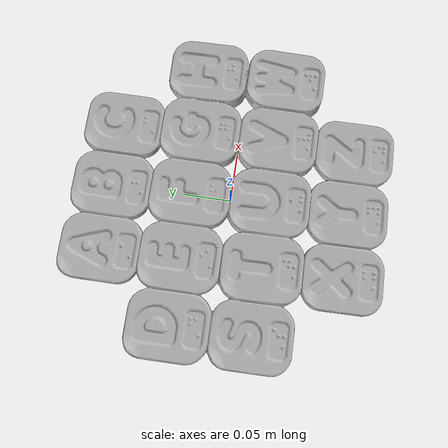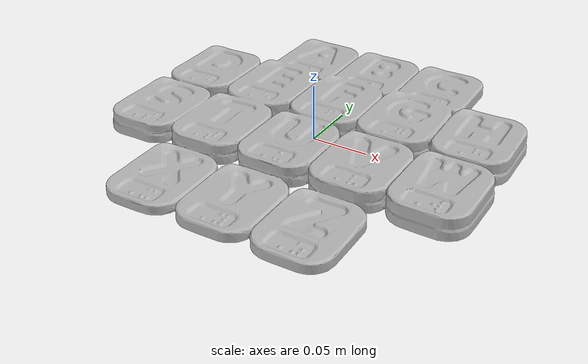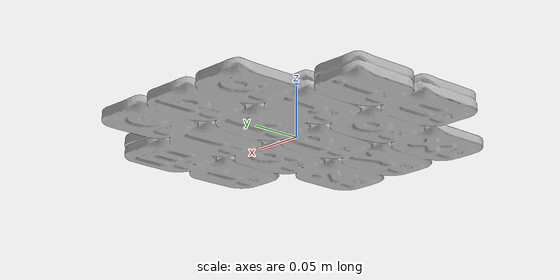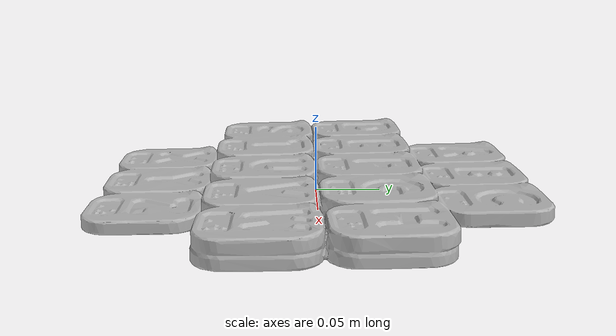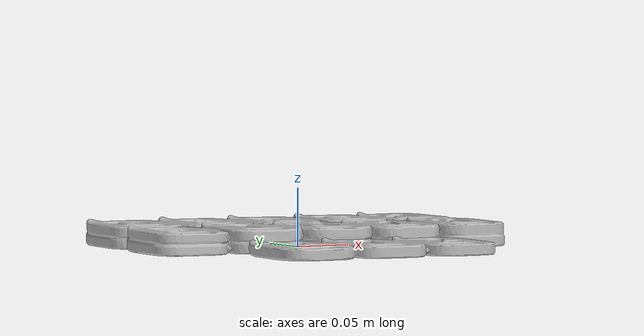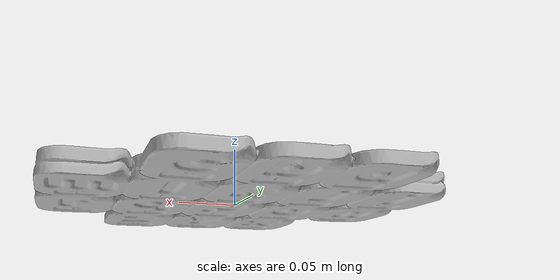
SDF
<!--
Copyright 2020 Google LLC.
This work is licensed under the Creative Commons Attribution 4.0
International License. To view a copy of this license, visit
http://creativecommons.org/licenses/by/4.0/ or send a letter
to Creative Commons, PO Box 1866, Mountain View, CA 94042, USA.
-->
<?xml version="1.0" ?>
<sdf version="1.6">
  <model name="BRAILLE_ALPHABET_AZ">
    <link name="link_0">
      <visual name="visual">
        <geometry>
          <mesh>
            <uri>meshes/model.obj</uri>
          </mesh>
        </geometry>
      </visual>
      <collision name="collision_0">
        <geometry>
          <mesh>
            <uri>meshes/model.obj</uri>
          </mesh>
        </geometry>
      </collision>
    </link>
  </model>
</sdf>
